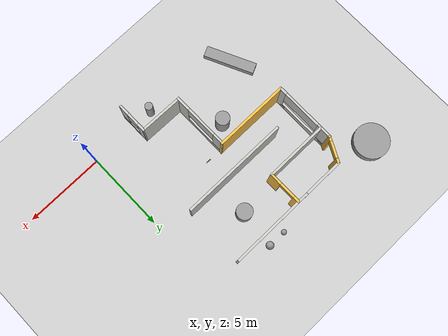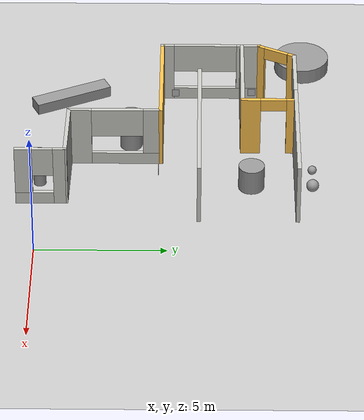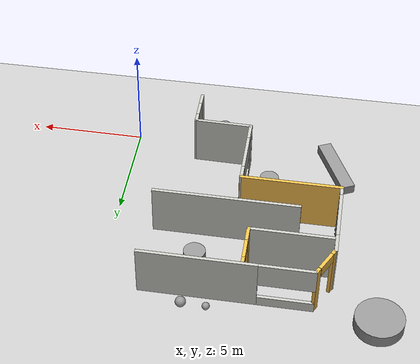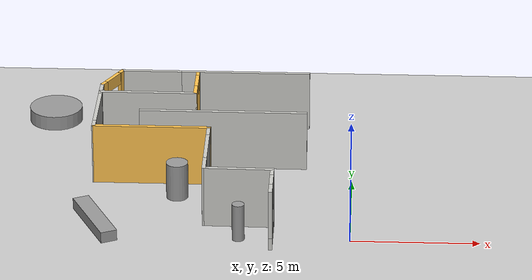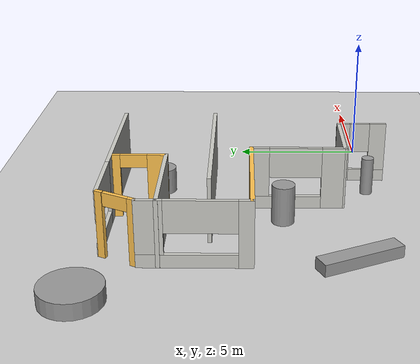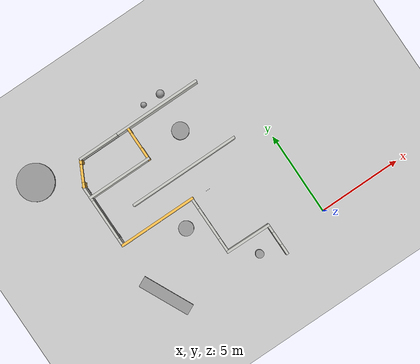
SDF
<sdf version="1.6">
 <world name="default">
  <model name="ground_plane">
   <static>1</static>
   <link name="link">
    <collision name="collision">
     <geometry><plane><normal>0 0 1</normal><size>100 100</size></plane></geometry>
     <surface>
      <contact><collide_bitmask>65535</collide_bitmask></contact>
      <friction><ode><mu>100</mu><mu2>50</mu2></ode></friction>
     </surface>
    </collision>
    <visual name="visual">
     <cast_shadows>0</cast_shadows>
     <geometry><plane><normal>0 0 1</normal><size>100 100</size></plane></geometry>
     <material>
      <script><uri>file://media/materials/scripts/gazebo.material</uri><name>Gazebo/Grey</name></script>
     </material>
    </visual>
   </link>
  </model>
  <model name="unit_cylinder">
   <pose>-4.10994 8.17937 0.499996 3e-06 1e-06 -0</pose>
   <link name="link">
    <inertial>
     <mass>1</mass>
     <inertia><ixx>0.145833</ixx><ixy>0</ixy><ixz>0</ixz><iyy>0.145833</iyy><iyz>0</iyz><izz>0.125</izz></inertia>
    </inertial>
    <collision name="collision">
     <geometry><cylinder><radius>0.5</radius><length>1</length></cylinder></geometry>
    </collision>
    <visual name="visual">
     <geometry><cylinder><radius>0.5</radius><length>1</length></cylinder></geometry>
     <material>
      <script><name>Gazebo/Grey</name><uri>file://media/materials/scripts/gazebo.material</uri></script>
     </material>
    </visual>
   </link>
  </model>
  <model name="Apriltag36_11_00002">
   <link name="main">
    <visual name="main_Visual">
     <geometry><box><size>0.3 0.3 0.01</size></box></geometry>
     <material>
      <script>
       <uri>model://Apriltag36_11_00002/materials/scripts</uri>
       <uri>model://Apriltag36_11_00002/materials/textures</uri>
       <name>Apriltag36_11_00002</name>
      </script>
     </material>
    </visual>
   </link>
   <static>1</static>
   <pose>-10.191 5.19682 0.271947 1.5708 -0 1.5708</pose>
  </model>
  <model name="Apriltag36_11_00005">
   <link name="main">
    <visual name="main_Visual">
     <geometry><box><size>0.3 0.3 0.01</size></box></geometry>
     <material>
      <script>
       <uri>model://Apriltag36_11_00005/materials/scripts</uri>
       <uri>model://Apriltag36_11_00005/materials/textures</uri>
       <name>Apriltag36_11_00005</name>
      </script>
     </material>
    </visual>
   </link>
   <static>1</static>
   <pose>-4.71563 4.58614 0.3494 1.5708 -0 0</pose>
  </model>
  <model name="Apriltag36_11_00009">
   <link name="main">
    <visual name="main_Visual">
     <geometry><box><size>0.3 0.3 0.01</size></box></geometry>
     <material>
      <script>
       <uri>model://Apriltag36_11_00009/materials/scripts</uri>
       <uri>model://Apriltag36_11_00009/materials/textures</uri>
       <name>Apriltag36_11_00009</name>
      </script>
     </material>
    </visual>
   </link>
   <static>1</static>
   <pose>-10.1922 8.25876 0.312692 1.5708 -0 1.5708</pose>
  </model>
  <model name="House2">
   <link name="Wall_11">
    <pose>-5.56128 -0.730875 0 0 -0 1.57452</pose>
    <visual name="Wall_11_Visual_0">
     <pose>-1.37937 0 1.25 0 -0 0</pose>
     <geometry><box><size>0.939651 0.15 2.5</size></box></geometry>
     <material>
      <script><uri>file://media/materials/scripts/gazebo.material</uri><name>Gazebo/CeilingTiled</name></script>
      <ambient>1 0.764706 0.305882 1</ambient>
     </material>
     <meta><layer>0</layer></meta>
    </visual>
    <visual name="Wall_11_Visual_1">
     <pose>0.469826 0 0.25 0 -0 0</pose>
     <geometry><box><size>2.75875 0.15 0.5</size></box></geometry>
     <material>
      <script><uri>file://media/materials/scripts/gazebo.material</uri><name>Gazebo/CeilingTiled</name></script>
      <ambient>1 0.764706 0.305882 1</ambient>
     </material>
     <meta><layer>0</layer></meta>
    </visual>
    <visual name="Wall_11_Visual_2">
     <pose>1.46983 0 1.5 0 -0 0</pose>
     <geometry><box><size>0.758748 0.15 2</size></box></geometry>
     <material>
      <script><uri>file://media/materials/scripts/gazebo.material</uri><name>Gazebo/CeilingTiled</name></script>
      <ambient>1 0.764706 0.305882 1</ambient>
     </material>
     <meta><layer>0</layer></meta>
    </visual>
    <visual name="Wall_11_Visual_3">
     <pose>0.090452 0 1.9 0 -0 0</pose>
     <geometry><box><size>2 0.15 1.2</size></box></geometry>
     <material>
      <script><uri>file://media/materials/scripts/gazebo.material</uri><name>Gazebo/CeilingTiled</name></script>
      <ambient>1 0.764706 0.305882 1</ambient>
     </material>
     <meta><layer>0</layer></meta>
    </visual>
    <collision name="Wall_11_Collision_0">
     <pose>-1.37937 0 1.25 0 -0 0</pose>
     <geometry><box><size>0.939651 0.15 2.5</size></box></geometry>
     <surface>
      <friction>
       <ode><mu>1</mu><mu2>1</mu2><fdir1>0 0 0</fdir1><slip1>0</slip1><slip2>0</slip2></ode>
       <torsional>
        <coefficient>1</coefficient>
        <patch_radius>0</patch_radius>
        <surface_radius>0</surface_radius>
        <use_patch_radius>1</use_patch_radius>
        <ode><slip>0</slip></ode>
       </torsional>
      </friction>
      <bounce><restitution_coefficient>0</restitution_coefficient><threshold>1e+06</threshold></bounce>
      <contact>
       <collide_without_contact>0</collide_without_contact>
       <collide_without_contact_bitmask>1</collide_without_contact_bitmask>
       <collide_bitmask>1</collide_bitmask>
       <ode>
        <soft_cfm>0</soft_cfm>
        <soft_erp>0.2</soft_erp>
        <kp>1e+13</kp>
        <kd>1</kd>
        <max_vel>0.01</max_vel>
        <min_depth>0</min_depth>
       </ode>
       <bullet>
        <split_impulse>1</split_impulse>
        <split_impulse_penetration_threshold>-0.01</split_impulse_penetration_threshold>
        <soft_cfm>0</soft_cfm>
        <soft_erp>0.2</soft_erp>
        <kp>1e+13</kp>
        <kd>1</kd>
       </bullet>
      </contact>
     </surface>
    </collision>
    <collision name="Wall_11_Collision_1">
     <pose>0.469826 0 0.25 0 -0 0</pose>
     <geometry><box><size>2.75875 0.15 0.5</size></box></geometry>
     <surface>
      <friction>
       <ode><mu>1</mu><mu2>1</mu2><fdir1>0 0 0</fdir1><slip1>0</slip1><slip2>0</slip2></ode>
       <torsional>
        <coefficient>1</coefficient>
        <patch_radius>0</patch_radius>
        <surface_radius>0</surface_radius>
        <use_patch_radius>1</use_patch_radius>
        <ode><slip>0</slip></ode>
       </torsional>
      </friction>
      <bounce><restitution_coefficient>0</restitution_coefficient><threshold>1e+06</threshold></bounce>
      <contact>
       <collide_without_contact>0</collide_without_contact>
       <collide_without_contact_bitmask>1</collide_without_contact_bitmask>
       <collide_bitmask>1</collide_bitmask>
       <ode>
        <soft_cfm>0</soft_cfm>
        <soft_erp>0.2</soft_erp>
        <kp>1e+13</kp>
        <kd>1</kd>
        <max_vel>0.01</max_vel>
        <min_depth>0</min_depth>
       </ode>
       <bullet>
        <split_impulse>1</split_impulse>
        <split_impulse_penetration_threshold>-0.01</split_impulse_penetration_threshold>
        <soft_cfm>0</soft_cfm>
        <soft_erp>0.2</soft_erp>
        <kp>1e+13</kp>
        <kd>1</kd>
       </bullet>
      </contact>
     </surface>
    </collision>
    <collision name="Wall_11_Collision_2">
     <pose>1.46983 0 1.5 0 -0 0</pose>
     <geometry><box><size>0.758748 0.15 2</size></box></geometry>
     <surface>
      <friction>
       <ode><mu>1</mu><mu2>1</mu2><fdir1>0 0 0</fdir1><slip1>0</slip1><slip2>0</slip2></ode>
       <torsional>
        <coefficient>1</coefficient>
        <patch_radius>0</patch_radius>
        <surface_radius>0</surface_radius>
        <use_patch_radius>1</use_patch_radius>
        <ode><slip>0</slip></ode>
       </torsional>
      </friction>
      <bounce><restitution_coefficient>0</restitution_coefficient><threshold>1e+06</threshold></bounce>
      <contact>
       <collide_without_contact>0</collide_without_contact>
       <collide_without_contact_bitmask>1</collide_without_contact_bitmask>
       <collide_bitmask>1</collide_bitmask>
       <ode>
        <soft_cfm>0</soft_cfm>
        <soft_erp>0.2</soft_erp>
        <kp>1e+13</kp>
        <kd>1</kd>
        <max_vel>0.01</max_vel>
        <min_depth>0</min_depth>
       </ode>
       <bullet>
        <split_impulse>1</split_impulse>
        <split_impulse_penetration_threshold>-0.01</split_impulse_penetration_threshold>
        <soft_cfm>0</soft_cfm>
        <soft_erp>0.2</soft_erp>
        <kp>1e+13</kp>
        <kd>1</kd>
       </bullet>
      </contact>
     </surface>
    </collision>
    <collision name="Wall_11_Collision_3">
     <pose>0.090452 0 1.9 0 -0 0</pose>
     <geometry><box><size>2 0.15 1.2</size></box></geometry>
     <surface>
      <friction>
       <ode><mu>1</mu><mu2>1</mu2><fdir1>0 0 0</fdir1><slip1>0</slip1><slip2>0</slip2></ode>
       <torsional>
        <coefficient>1</coefficient>
        <patch_radius>0</patch_radius>
        <surface_radius>0</surface_radius>
        <use_patch_radius>1</use_patch_radius>
        <ode><slip>0</slip></ode>
       </torsional>
      </friction>
      <bounce><restitution_coefficient>0</restitution_coefficient><threshold>1e+06</threshold></bounce>
      <contact>
       <collide_without_contact>0</collide_without_contact>
       <collide_without_contact_bitmask>1</collide_without_contact_bitmask>
       <collide_bitmask>1</collide_bitmask>
       <ode>
        <soft_cfm>0</soft_cfm>
        <soft_erp>0.2</soft_erp>
        <kp>1e+13</kp>
        <kd>1</kd>
        <max_vel>0.01</max_vel>
        <min_depth>0</min_depth>
       </ode>
       <bullet>
        <split_impulse>1</split_impulse>
        <split_impulse_penetration_threshold>-0.01</split_impulse_penetration_threshold>
        <soft_cfm>0</soft_cfm>
        <soft_erp>0.2</soft_erp>
        <kp>1e+13</kp>
        <kd>1</kd>
       </bullet>
      </contact>
     </surface>
    </collision>
   </link>
   <link name="Wall_16">
    <pose>-2.90665 -3.46974 0 0 0 -1.5708</pose>
    <visual name="Wall_16_Visual_0">
     <pose>-0.732687 0 1.25 0 -0 0</pose>
     <geometry><box><size>0.534625 0.15 2.5</size></box></geometry>
     <material>
      <script><uri>file://media/materials/scripts/gazebo.material</uri><name>Gazebo/CeilingTiled</name></script>
      <ambient>1 0.764706 0.305882 1</ambient>
     </material>
     <meta><layer>0</layer></meta>
    </visual>
    <visual name="Wall_16_Visual_1">
     <pose>0.267313 0 0.25 0 -0 0</pose>
     <geometry><box><size>1.46538 0.15 0.5</size></box></geometry>
     <material>
      <script><uri>file://media/materials/scripts/gazebo.material</uri><name>Gazebo/CeilingTiled</name></script>
      <ambient>1 0.764706 0.305882 1</ambient>
     </material>
     <meta><layer>0</layer></meta>
    </visual>
    <visual name="Wall_16_Visual_2">
     <pose>0.667313 0 1.5 0 -0 0</pose>
     <geometry><box><size>0.665375 0.15 2</size></box></geometry>
     <material>
      <script><uri>file://media/materials/scripts/gazebo.material</uri><name>Gazebo/CeilingTiled</name></script>
      <ambient>1 0.764706 0.305882 1</ambient>
     </material>
     <meta><layer>0</layer></meta>
    </visual>
    <visual name="Wall_16_Visual_3">
     <pose>-0.065375 0 1.9 0 -0 0</pose>
     <geometry><box><size>0.8 0.15 1.2</size></box></geometry>
     <material>
      <script><uri>file://media/materials/scripts/gazebo.material</uri><name>Gazebo/CeilingTiled</name></script>
      <ambient>1 0.764706 0.305882 1</ambient>
     </material>
     <meta><layer>0</layer></meta>
    </visual>
    <collision name="Wall_16_Collision_0">
     <pose>-0.732687 0 1.25 0 -0 0</pose>
     <geometry><box><size>0.534625 0.15 2.5</size></box></geometry>
     <surface>
      <friction>
       <ode><mu>1</mu><mu2>1</mu2><fdir1>0 0 0</fdir1><slip1>0</slip1><slip2>0</slip2></ode>
       <torsional>
        <coefficient>1</coefficient>
        <patch_radius>0</patch_radius>
        <surface_radius>0</surface_radius>
        <use_patch_radius>1</use_patch_radius>
        <ode><slip>0</slip></ode>
       </torsional>
      </friction>
      <bounce><restitution_coefficient>0</restitution_coefficient><threshold>1e+06</threshold></bounce>
      <contact>
       <collide_without_contact>0</collide_without_contact>
       <collide_without_contact_bitmask>1</collide_without_contact_bitmask>
       <collide_bitmask>1</collide_bitmask>
       <ode>
        <soft_cfm>0</soft_cfm>
        <soft_erp>0.2</soft_erp>
        <kp>1e+13</kp>
        <kd>1</kd>
        <max_vel>0.01</max_vel>
        <min_depth>0</min_depth>
       </ode>
       <bullet>
        <split_impulse>1</split_impulse>
        <split_impulse_penetration_threshold>-0.01</split_impulse_penetration_threshold>
        <soft_cfm>0</soft_cfm>
        <soft_erp>0.2</soft_erp>
        <kp>1e+13</kp>
        <kd>1</kd>
       </bullet>
      </contact>
     </surface>
    </collision>
    <collision name="Wall_16_Collision_1">
     <pose>0.267313 0 0.25 0 -0 0</pose>
     <geometry><box><size>1.46538 0.15 0.5</size></box></geometry>
     <surface>
      <friction>
       <ode><mu>1</mu><mu2>1</mu2><fdir1>0 0 0</fdir1><slip1>0</slip1><slip2>0</slip2></ode>
       <torsional>
        <coefficient>1</coefficient>
        <patch_radius>0</patch_radius>
        <surface_radius>0</surface_radius>
        <use_patch_radius>1</use_patch_radius>
        <ode><slip>0</slip></ode>
       </torsional>
      </friction>
      <bounce><restitution_coefficient>0</restitution_coefficient><threshold>1e+06</threshold></bounce>
      <contact>
       <collide_without_contact>0</collide_without_contact>
       <collide_without_contact_bitmask>1</collide_without_contact_bitmask>
       <collide_bitmask>1</collide_bitmask>
       <ode>
        <soft_cfm>0</soft_cfm>
        <soft_erp>0.2</soft_erp>
        <kp>1e+13</kp>
        <kd>1</kd>
        <max_vel>0.01</max_vel>
        <min_depth>0</min_depth>
       </ode>
       <bullet>
        <split_impulse>1</split_impulse>
        <split_impulse_penetration_threshold>-0.01</split_impulse_penetration_threshold>
        <soft_cfm>0</soft_cfm>
        <soft_erp>0.2</soft_erp>
        <kp>1e+13</kp>
        <kd>1</kd>
       </bullet>
      </contact>
     </surface>
    </collision>
    <collision name="Wall_16_Collision_2">
     <pose>0.667313 0 1.5 0 -0 0</pose>
     <geometry><box><size>0.665375 0.15 2</size></box></geometry>
     <surface>
      <friction>
       <ode><mu>1</mu><mu2>1</mu2><fdir1>0 0 0</fdir1><slip1>0</slip1><slip2>0</slip2></ode>
       <torsional>
        <coefficient>1</coefficient>
        <patch_radius>0</patch_radius>
        <surface_radius>0</surface_radius>
        <use_patch_radius>1</use_patch_radius>
        <ode><slip>0</slip></ode>
       </torsional>
      </friction>
      <bounce><restitution_coefficient>0</restitution_coefficient><threshold>1e+06</threshold></bounce>
      <contact>
       <collide_without_contact>0</collide_without_contact>
       <collide_without_contact_bitmask>1</collide_without_contact_bitmask>
       <collide_bitmask>1</collide_bitmask>
       <ode>
        <soft_cfm>0</soft_cfm>
        <soft_erp>0.2</soft_erp>
        <kp>1e+13</kp>
        <kd>1</kd>
        <max_vel>0.01</max_vel>
        <min_depth>0</min_depth>
       </ode>
       <bullet>
        <split_impulse>1</split_impulse>
        <split_impulse_penetration_threshold>-0.01</split_impulse_penetration_threshold>
        <soft_cfm>0</soft_cfm>
        <soft_erp>0.2</soft_erp>
        <kp>1e+13</kp>
        <kd>1</kd>
       </bullet>
      </contact>
     </surface>
    </collision>
    <collision name="Wall_16_Collision_3">
     <pose>-0.065375 0 1.9 0 -0 0</pose>
     <geometry><box><size>0.8 0.15 1.2</size></box></geometry>
     <surface>
      <friction>
       <ode><mu>1</mu><mu2>1</mu2><fdir1>0 0 0</fdir1><slip1>0</slip1><slip2>0</slip2></ode>
       <torsional>
        <coefficient>1</coefficient>
        <patch_radius>0</patch_radius>
        <surface_radius>0</surface_radius>
        <use_patch_radius>1</use_patch_radius>
        <ode><slip>0</slip></ode>
       </torsional>
      </friction>
      <bounce><restitution_coefficient>0</restitution_coefficient><threshold>1e+06</threshold></bounce>
      <contact>
       <collide_without_contact>0</collide_without_contact>
       <collide_without_contact_bitmask>1</collide_without_contact_bitmask>
       <collide_bitmask>1</collide_bitmask>
       <ode>
        <soft_cfm>0</soft_cfm>
        <soft_erp>0.2</soft_erp>
        <kp>1e+13</kp>
        <kd>1</kd>
        <max_vel>0.01</max_vel>
        <min_depth>0</min_depth>
       </ode>
       <bullet>
        <split_impulse>1</split_impulse>
        <split_impulse_penetration_threshold>-0.01</split_impulse_penetration_threshold>
        <soft_cfm>0</soft_cfm>
        <soft_erp>0.2</soft_erp>
        <kp>1e+13</kp>
        <kd>1</kd>
       </bullet>
      </contact>
     </surface>
    </collision>
   </link>
   <link name="Wall_27_clone">
    <pose>-9.80571 5.54335 0 0 -0 1.09911</pose>
    <inertial>
     <mass>1</mass>
     <inertia><ixx>1</ixx><ixy>0</ixy><ixz>0</ixz><iyy>1</iyy><iyz>0</iyz><izz>1</izz></inertia>
    </inertial>
    <visual name="Wall_27_Visual_0">
     <pose>-0.616683 0 1.25 0 -0 0</pose>
     <geometry><box><size>0.333366 0.15 2.5</size></box></geometry>
     <material>
      <script><uri>file://media/materials/scripts/gazebo.material</uri><name>Gazebo/Grey</name></script>
      <ambient>1 0.765 0.306 1</ambient>
      <shader type="vertex"><normal_map>__default__</normal_map></shader>
      <diffuse>0.7 0.7 0.7 1</diffuse>
      <specular>0.01 0.01 0.01 1</specular>
      <emissive>0 0 0 1</emissive>
     </material>
     <meta><layer>0</layer></meta>
    </visual>
    <visual name="Wall_27_Visual_2">
     <pose>0.041634 0 2.25 0 -0 0</pose>
     <geometry><box><size>1 0.15 0.5</size></box></geometry>
     <material>
      <script><uri>file://media/materials/scripts/gazebo.material</uri><name>Gazebo/Grey</name></script>
      <ambient>1 0.765 0.306 1</ambient>
      <shader type="vertex"><normal_map>__default__</normal_map></shader>
      <diffuse>0.7 0.7 0.7 1</diffuse>
      <specular>0.01 0.01 0.01 1</specular>
      <emissive>0 0 0 1</emissive>
     </material>
     <meta><layer>0</layer></meta>
    </visual>
    <visual name="Wall_27_Visual_1">
     <pose>0.708317 0 1.25 0 -0 0</pose>
     <geometry><box><size>0.293366 0.15 2.5</size></box></geometry>
     <material>
      <script><uri>file://media/materials/scripts/gazebo.material</uri><name>Gazebo/Grey</name></script>
      <ambient>1 0.765 0.306 1</ambient>
      <shader type="vertex"><normal_map>__default__</normal_map></shader>
      <diffuse>0.7 0.7 0.7 1</diffuse>
      <specular>0.01 0.01 0.01 1</specular>
      <emissive>0 0 0 1</emissive>
     </material>
     <meta><layer>0</layer></meta>
    </visual>
    <collision name="Wall_27_Collision_1">
     <pose>0.708317 0 1.25 0 -0 0</pose>
     <geometry><box><size>0.333366 0.15 2.5</size></box></geometry>
     <surface>
      <friction>
       <ode><mu>1</mu><mu2>1</mu2><fdir1>0 0 0</fdir1><slip1>0</slip1><slip2>0</slip2></ode>
       <torsional>
        <coefficient>1</coefficient>
        <patch_radius>0</patch_radius>
        <surface_radius>0</surface_radius>
        <use_patch_radius>1</use_patch_radius>
        <ode><slip>0</slip></ode>
       </torsional>
      </friction>
      <bounce><restitution_coefficient>0</restitution_coefficient><threshold>1e+06</threshold></bounce>
      <contact>
       <collide_without_contact>0</collide_without_contact>
       <collide_without_contact_bitmask>1</collide_without_contact_bitmask>
       <collide_bitmask>1</collide_bitmask>
       <ode>
        <soft_cfm>0</soft_cfm>
        <soft_erp>0.2</soft_erp>
        <kp>1e+13</kp>
        <kd>1</kd>
        <max_vel>0.01</max_vel>
        <min_depth>0</min_depth>
       </ode>
       <bullet>
        <split_impulse>1</split_impulse>
        <split_impulse_penetration_threshold>-0.01</split_impulse_penetration_threshold>
        <soft_cfm>0</soft_cfm>
        <soft_erp>0.2</soft_erp>
        <kp>1e+13</kp>
        <kd>1</kd>
       </bullet>
      </contact>
     </surface>
    </collision>
    <collision name="Wall_27_Collision_2">
     <pose>0.041634 0 2.25 0 -0 0</pose>
     <geometry><box><size>1 0.15 0.5</size></box></geometry>
     <surface>
      <friction>
       <ode><mu>1</mu><mu2>1</mu2><fdir1>0 0 0</fdir1><slip1>0</slip1><slip2>0</slip2></ode>
       <torsional>
        <coefficient>1</coefficient>
        <patch_radius>0</patch_radius>
        <surface_radius>0</surface_radius>
        <use_patch_radius>1</use_patch_radius>
        <ode><slip>0</slip></ode>
       </torsional>
      </friction>
      <bounce><restitution_coefficient>0</restitution_coefficient><threshold>1e+06</threshold></bounce>
      <contact>
       <collide_without_contact>0</collide_without_contact>
       <collide_without_contact_bitmask>1</collide_without_contact_bitmask>
       <collide_bitmask>1</collide_bitmask>
       <ode>
        <soft_cfm>0</soft_cfm>
        <soft_erp>0.2</soft_erp>
        <kp>1e+13</kp>
        <kd>1</kd>
        <max_vel>0.01</max_vel>
        <min_depth>0</min_depth>
       </ode>
       <bullet>
        <split_impulse>1</split_impulse>
        <split_impulse_penetration_threshold>-0.01</split_impulse_penetration_threshold>
        <soft_cfm>0</soft_cfm>
        <soft_erp>0.2</soft_erp>
        <kp>1e+13</kp>
        <kd>1</kd>
       </bullet>
      </contact>
     </surface>
    </collision>
    <collision name="Wall_27_Collision_0">
     <pose>-0.616683 0 1.25 0 -0 0</pose>
     <geometry><box><size>0.333366 0.15 2.5</size></box></geometry>
     <surface>
      <friction>
       <ode><mu>1</mu><mu2>1</mu2><fdir1>0 0 0</fdir1><slip1>0</slip1><slip2>0</slip2></ode>
       <torsional>
        <coefficient>1</coefficient>
        <patch_radius>0</patch_radius>
        <surface_radius>0</surface_radius>
        <use_patch_radius>1</use_patch_radius>
        <ode><slip>0</slip></ode>
       </torsional>
      </friction>
      <bounce><restitution_coefficient>0</restitution_coefficient><threshold>1e+06</threshold></bounce>
      <contact>
       <collide_without_contact>0</collide_without_contact>
       <collide_without_contact_bitmask>1</collide_without_contact_bitmask>
       <collide_bitmask>1</collide_bitmask>
       <ode>
        <soft_cfm>0</soft_cfm>
        <soft_erp>0.2</soft_erp>
        <kp>1e+13</kp>
        <kd>1</kd>
        <max_vel>0.01</max_vel>
        <min_depth>0</min_depth>
       </ode>
       <bullet>
        <split_impulse>1</split_impulse>
        <split_impulse_penetration_threshold>-0.01</split_impulse_penetration_threshold>
        <soft_cfm>0</soft_cfm>
        <soft_erp>0.2</soft_erp>
        <kp>1e+13</kp>
        <kd>1</kd>
       </bullet>
      </contact>
     </surface>
    </collision>
   </link>
   <link name="Wall_30">
    <pose>-4.23066 -2.5249 0 0 0 -0.014982</pose>
    <visual name="Wall_30_Visual">
     <pose>0 0 1.25 0 -0 0</pose>
     <geometry><box><size>2.79832 0.15 2.5</size></box></geometry>
     <material>
      <script><uri>file://media/materials/scripts/gazebo.material</uri><name>Gazebo/CeilingTiled</name></script>
      <ambient>1 0.764706 0.305882 1</ambient>
     </material>
     <meta><layer>0</layer></meta>
    </visual>
    <collision name="Wall_30_Collision">
     <pose>0 0 1.25 0 -0 0</pose>
     <geometry><box><size>2.79832 0.15 2.5</size></box></geometry>
     <surface>
      <friction>
       <ode><mu>1</mu><mu2>1</mu2><fdir1>0 0 0</fdir1><slip1>0</slip1><slip2>0</slip2></ode>
       <torsional>
        <coefficient>1</coefficient>
        <patch_radius>0</patch_radius>
        <surface_radius>0</surface_radius>
        <use_patch_radius>1</use_patch_radius>
        <ode><slip>0</slip></ode>
       </torsional>
      </friction>
      <bounce><restitution_coefficient>0</restitution_coefficient><threshold>1e+06</threshold></bounce>
      <contact>
       <collide_without_contact>0</collide_without_contact>
       <collide_without_contact_bitmask>1</collide_without_contact_bitmask>
       <collide_bitmask>1</collide_bitmask>
       <ode>
        <soft_cfm>0</soft_cfm>
        <soft_erp>0.2</soft_erp>
        <kp>1e+13</kp>
        <kd>1</kd>
        <max_vel>0.01</max_vel>
        <min_depth>0</min_depth>
       </ode>
       <bullet>
        <split_impulse>1</split_impulse>
        <split_impulse_penetration_threshold>-0.01</split_impulse_penetration_threshold>
        <soft_cfm>0</soft_cfm>
        <soft_erp>0.2</soft_erp>
        <kp>1e+13</kp>
        <kd>1</kd>
       </bullet>
      </contact>
     </surface>
    </collision>
   </link>
   <link name="Wall_49">
    <pose>-6.20027 6.28663 0 0 -0 3.14159</pose>
    <inertial>
     <mass>1</mass>
     <inertia><ixx>1</ixx><ixy>0</ixy><ixz>0</ixz><iyy>1</iyy><iyz>0</iyz><izz>1</izz></inertia>
    </inertial>
    <visual name="Wall_49_Visual_0">
     <pose>-1.85645 0 1.25 0 -0 0</pose>
     <geometry><box><size>5.28711 0.15 2.5</size></box></geometry>
     <material>
      <script><uri>file://media/materials/scripts/gazebo.material</uri><name>Gazebo/CeilingTiled</name></script>
      <ambient>1 0.765 0.306 1</ambient>
      <shader type="vertex"><normal_map>__default__</normal_map></shader>
      <diffuse>1 1 1 1</diffuse>
      <specular>0 0 0 1</specular>
      <emissive>0 0 0 1</emissive>
     </material>
     <meta><layer>0</layer></meta>
    </visual>
    <visual name="Wall_49_Visual_1">
     <pose>2.0371 0 0.25 0 -0 0</pose>
     <geometry><box><size>2.5 0.15 0.5</size></box></geometry>
     <material>
      <script><uri>file://media/materials/scripts/gazebo.material</uri><name>Gazebo/CeilingTiled</name></script>
      <ambient>1 0.765 0.306 1</ambient>
      <shader type="vertex"><normal_map>__default__</normal_map></shader>
      <diffuse>1 1 1 1</diffuse>
      <specular>0 0 0 1</specular>
      <emissive>0 0 0 1</emissive>
     </material>
     <meta><layer>0</layer></meta>
    </visual>
    <visual name="Wall_49_Visual_3">
     <pose>2.0371 0 1.9 0 -0 0</pose>
     <geometry><box><size>2.5 0.15 1.2</size></box></geometry>
     <material>
      <script><uri>file://media/materials/scripts/gazebo.material</uri><name>Gazebo/CeilingTiled</name></script>
      <ambient>1 0.765 0.306 1</ambient>
      <shader type="vertex"><normal_map>__default__</normal_map></shader>
      <diffuse>1 1 1 1</diffuse>
      <specular>0 0 0 1</specular>
      <emissive>0 0 0 1</emissive>
     </material>
     <meta><layer>0</layer></meta>
    </visual>
    <collision name="Wall_49_Collision_0">
     <pose>-1.85645 0 1.25 0 -0 0</pose>
     <geometry><box><size>5.28711 0.15 2.5</size></box></geometry>
     <surface>
      <friction>
       <ode><mu>1</mu><mu2>1</mu2><fdir1>0 0 0</fdir1><slip1>0</slip1><slip2>0</slip2></ode>
       <torsional>
        <coefficient>1</coefficient>
        <patch_radius>0</patch_radius>
        <surface_radius>0</surface_radius>
        <use_patch_radius>1</use_patch_radius>
        <ode><slip>0</slip></ode>
       </torsional>
      </friction>
      <bounce><restitution_coefficient>0</restitution_coefficient><threshold>1e+06</threshold></bounce>
      <contact>
       <collide_without_contact>0</collide_without_contact>
       <collide_without_contact_bitmask>1</collide_without_contact_bitmask>
       <collide_bitmask>1</collide_bitmask>
       <ode>
        <soft_cfm>0</soft_cfm>
        <soft_erp>0.2</soft_erp>
        <kp>1e+13</kp>
        <kd>1</kd>
        <max_vel>0.01</max_vel>
        <min_depth>0</min_depth>
       </ode>
       <bullet>
        <split_impulse>1</split_impulse>
        <split_impulse_penetration_threshold>-0.01</split_impulse_penetration_threshold>
        <soft_cfm>0</soft_cfm>
        <soft_erp>0.2</soft_erp>
        <kp>1e+13</kp>
        <kd>1</kd>
       </bullet>
      </contact>
     </surface>
    </collision>
    <collision name="Wall_49_Collision_1">
     <pose>2.0371 0 0.25 0 -0 0</pose>
     <geometry><box><size>2.5 0.15 0.5</size></box></geometry>
     <surface>
      <friction>
       <ode><mu>1</mu><mu2>1</mu2><fdir1>0 0 0</fdir1><slip1>0</slip1><slip2>0</slip2></ode>
       <torsional>
        <coefficient>1</coefficient>
        <patch_radius>0</patch_radius>
        <surface_radius>0</surface_radius>
        <use_patch_radius>1</use_patch_radius>
        <ode><slip>0</slip></ode>
       </torsional>
      </friction>
      <bounce><restitution_coefficient>0</restitution_coefficient><threshold>1e+06</threshold></bounce>
      <contact>
       <collide_without_contact>0</collide_without_contact>
       <collide_without_contact_bitmask>1</collide_without_contact_bitmask>
       <collide_bitmask>1</collide_bitmask>
       <ode>
        <soft_cfm>0</soft_cfm>
        <soft_erp>0.2</soft_erp>
        <kp>1e+13</kp>
        <kd>1</kd>
        <max_vel>0.01</max_vel>
        <min_depth>0</min_depth>
       </ode>
       <bullet>
        <split_impulse>1</split_impulse>
        <split_impulse_penetration_threshold>-0.01</split_impulse_penetration_threshold>
        <soft_cfm>0</soft_cfm>
        <soft_erp>0.2</soft_erp>
        <kp>1e+13</kp>
        <kd>1</kd>
       </bullet>
      </contact>
     </surface>
    </collision>
    <collision name="Wall_49_Collision_3">
     <pose>2.0371 0 1.9 0 -0 0</pose>
     <geometry><box><size>2.5 0.15 1.2</size></box></geometry>
     <surface>
      <friction>
       <ode><mu>1</mu><mu2>1</mu2><fdir1>0 0 0</fdir1><slip1>0</slip1><slip2>0</slip2></ode>
       <torsional>
        <coefficient>1</coefficient>
        <patch_radius>0</patch_radius>
        <surface_radius>0</surface_radius>
        <use_patch_radius>1</use_patch_radius>
        <ode><slip>0</slip></ode>
       </torsional>
      </friction>
      <bounce><restitution_coefficient>0</restitution_coefficient><threshold>1e+06</threshold></bounce>
      <contact>
       <collide_without_contact>0</collide_without_contact>
       <collide_without_contact_bitmask>1</collide_without_contact_bitmask>
       <collide_bitmask>1</collide_bitmask>
       <ode>
        <soft_cfm>0</soft_cfm>
        <soft_erp>0.2</soft_erp>
        <kp>1e+13</kp>
        <kd>1</kd>
        <max_vel>0.01</max_vel>
        <min_depth>0</min_depth>
       </ode>
       <bullet>
        <split_impulse>1</split_impulse>
        <split_impulse_penetration_threshold>-0.01</split_impulse_penetration_threshold>
        <soft_cfm>0</soft_cfm>
        <soft_erp>0.2</soft_erp>
        <kp>1e+13</kp>
        <kd>1</kd>
       </bullet>
      </contact>
     </surface>
    </collision>
   </link>
   <link name="Wall_54">
    <pose>-7.85467 1.04331 0 0 -0 3.14159</pose>
    <visual name="Wall_54_Visual">
     <pose>0 0 1.25 0 -0 0</pose>
     <geometry><box><size>4.75 0.15 2.5</size></box></geometry>
     <material>
      <script><uri>file://media/materials/scripts/gazebo.material</uri><name>Gazebo/Grey</name></script>
      <ambient>1 0.764706 0.305882 1</ambient>
     </material>
     <meta><layer>0</layer></meta>
    </visual>
    <collision name="Wall_54_Collision">
     <pose>0 0 1.25 0 -0 0</pose>
     <geometry><box><size>4.75 0.15 2.5</size></box></geometry>
     <surface>
      <friction>
       <ode><mu>1</mu><mu2>1</mu2><fdir1>0 0 0</fdir1><slip1>0</slip1><slip2>0</slip2></ode>
       <torsional>
        <coefficient>1</coefficient>
        <patch_radius>0</patch_radius>
        <surface_radius>0</surface_radius>
        <use_patch_radius>1</use_patch_radius>
        <ode><slip>0</slip></ode>
       </torsional>
      </friction>
      <bounce><restitution_coefficient>0</restitution_coefficient><threshold>1e+06</threshold></bounce>
      <contact>
       <collide_without_contact>0</collide_without_contact>
       <collide_without_contact_bitmask>1</collide_without_contact_bitmask>
       <collide_bitmask>1</collide_bitmask>
       <ode>
        <soft_cfm>0</soft_cfm>
        <soft_erp>0.2</soft_erp>
        <kp>1e+13</kp>
        <kd>1</kd>
        <max_vel>0.01</max_vel>
        <min_depth>0</min_depth>
       </ode>
       <bullet>
        <split_impulse>1</split_impulse>
        <split_impulse_penetration_threshold>-0.01</split_impulse_penetration_threshold>
        <soft_cfm>0</soft_cfm>
        <soft_erp>0.2</soft_erp>
        <kp>1e+13</kp>
        <kd>1</kd>
       </bullet>
      </contact>
     </surface>
    </collision>
   </link>
   <link name="Wall_55">
    <pose>-10.1547 2.96831 0 0 -0 1.5708</pose>
    <visual name="Wall_55_Visual_0">
     <pose>-1.73413 0 1.25 0 -0 0</pose>
     <geometry><box><size>0.531731 0.15 2.5</size></box></geometry>
     <material>
      <script><uri>file://media/materials/scripts/gazebo.material</uri><name>Gazebo/CeilingTiled</name></script>
      <ambient>1 0.764706 0.305882 1</ambient>
     </material>
     <meta><layer>0</layer></meta>
    </visual>
    <visual name="Wall_55_Visual_1">
     <pose>0.265865 0 0.25 0 -0 0</pose>
     <geometry><box><size>3.46827 0.15 0.5</size></box></geometry>
     <material>
      <script><uri>file://media/materials/scripts/gazebo.material</uri><name>Gazebo/CeilingTiled</name></script>
      <ambient>1 0.764706 0.305882 1</ambient>
     </material>
     <meta><layer>0</layer></meta>
    </visual>
    <visual name="Wall_55_Visual_2">
     <pose>1.51587 0 1.5 0 -0 0</pose>
     <geometry><box><size>0.968269 0.15 2</size></box></geometry>
     <material>
      <script><uri>file://media/materials/scripts/gazebo.material</uri><name>Gazebo/CeilingTiled</name></script>
      <ambient>1 0.764706 0.305882 1</ambient>
     </material>
     <meta><layer>0</layer></meta>
    </visual>
    <visual name="Wall_55_Visual_3">
     <pose>-0.218269 0 1.9 0 -0 0</pose>
     <geometry><box><size>2.5 0.15 1.2</size></box></geometry>
     <material>
      <script><uri>file://media/materials/scripts/gazebo.material</uri><name>Gazebo/CeilingTiled</name></script>
      <ambient>1 0.764706 0.305882 1</ambient>
     </material>
     <meta><layer>0</layer></meta>
    </visual>
    <collision name="Wall_55_Collision_0">
     <pose>-1.73413 0 1.25 0 -0 0</pose>
     <geometry><box><size>0.531731 0.15 2.5</size></box></geometry>
     <surface>
      <friction>
       <ode><mu>1</mu><mu2>1</mu2><fdir1>0 0 0</fdir1><slip1>0</slip1><slip2>0</slip2></ode>
       <torsional>
        <coefficient>1</coefficient>
        <patch_radius>0</patch_radius>
        <surface_radius>0</surface_radius>
        <use_patch_radius>1</use_patch_radius>
        <ode><slip>0</slip></ode>
       </torsional>
      </friction>
      <bounce><restitution_coefficient>0</restitution_coefficient><threshold>1e+06</threshold></bounce>
      <contact>
       <collide_without_contact>0</collide_without_contact>
       <collide_without_contact_bitmask>1</collide_without_contact_bitmask>
       <collide_bitmask>1</collide_bitmask>
       <ode>
        <soft_cfm>0</soft_cfm>
        <soft_erp>0.2</soft_erp>
        <kp>1e+13</kp>
        <kd>1</kd>
        <max_vel>0.01</max_vel>
        <min_depth>0</min_depth>
       </ode>
       <bullet>
        <split_impulse>1</split_impulse>
        <split_impulse_penetration_threshold>-0.01</split_impulse_penetration_threshold>
        <soft_cfm>0</soft_cfm>
        <soft_erp>0.2</soft_erp>
        <kp>1e+13</kp>
        <kd>1</kd>
       </bullet>
      </contact>
     </surface>
    </collision>
    <collision name="Wall_55_Collision_1">
     <pose>0.265865 0 0.25 0 -0 0</pose>
     <geometry><box><size>3.46827 0.15 0.5</size></box></geometry>
     <surface>
      <friction>
       <ode><mu>1</mu><mu2>1</mu2><fdir1>0 0 0</fdir1><slip1>0</slip1><slip2>0</slip2></ode>
       <torsional>
        <coefficient>1</coefficient>
        <patch_radius>0</patch_radius>
        <surface_radius>0</surface_radius>
        <use_patch_radius>1</use_patch_radius>
        <ode><slip>0</slip></ode>
       </torsional>
      </friction>
      <bounce><restitution_coefficient>0</restitution_coefficient><threshold>1e+06</threshold></bounce>
      <contact>
       <collide_without_contact>0</collide_without_contact>
       <collide_without_contact_bitmask>1</collide_without_contact_bitmask>
       <collide_bitmask>1</collide_bitmask>
       <ode>
        <soft_cfm>0</soft_cfm>
        <soft_erp>0.2</soft_erp>
        <kp>1e+13</kp>
        <kd>1</kd>
        <max_vel>0.01</max_vel>
        <min_depth>0</min_depth>
       </ode>
       <bullet>
        <split_impulse>1</split_impulse>
        <split_impulse_penetration_threshold>-0.01</split_impulse_penetration_threshold>
        <soft_cfm>0</soft_cfm>
        <soft_erp>0.2</soft_erp>
        <kp>1e+13</kp>
        <kd>1</kd>
       </bullet>
      </contact>
     </surface>
    </collision>
    <collision name="Wall_55_Collision_2">
     <pose>1.51587 0 1.5 0 -0 0</pose>
     <geometry><box><size>0.968269 0.15 2</size></box></geometry>
     <surface>
      <friction>
       <ode><mu>1</mu><mu2>1</mu2><fdir1>0 0 0</fdir1><slip1>0</slip1><slip2>0</slip2></ode>
       <torsional>
        <coefficient>1</coefficient>
        <patch_radius>0</patch_radius>
        <surface_radius>0</surface_radius>
        <use_patch_radius>1</use_patch_radius>
        <ode><slip>0</slip></ode>
       </torsional>
      </friction>
      <bounce><restitution_coefficient>0</restitution_coefficient><threshold>1e+06</threshold></bounce>
      <contact>
       <collide_without_contact>0</collide_without_contact>
       <collide_without_contact_bitmask>1</collide_without_contact_bitmask>
       <collide_bitmask>1</collide_bitmask>
       <ode>
        <soft_cfm>0</soft_cfm>
        <soft_erp>0.2</soft_erp>
        <kp>1e+13</kp>
        <kd>1</kd>
        <max_vel>0.01</max_vel>
        <min_depth>0</min_depth>
       </ode>
       <bullet>
        <split_impulse>1</split_impulse>
        <split_impulse_penetration_threshold>-0.01</split_impulse_penetration_threshold>
        <soft_cfm>0</soft_cfm>
        <soft_erp>0.2</soft_erp>
        <kp>1e+13</kp>
        <kd>1</kd>
       </bullet>
      </contact>
     </surface>
    </collision>
    <collision name="Wall_55_Collision_3">
     <pose>-0.218269 0 1.9 0 -0 0</pose>
     <geometry><box><size>2.5 0.15 1.2</size></box></geometry>
     <surface>
      <friction>
       <ode><mu>1</mu><mu2>1</mu2><fdir1>0 0 0</fdir1><slip1>0</slip1><slip2>0</slip2></ode>
       <torsional>
        <coefficient>1</coefficient>
        <patch_radius>0</patch_radius>
        <surface_radius>0</surface_radius>
        <use_patch_radius>1</use_patch_radius>
        <ode><slip>0</slip></ode>
       </torsional>
      </friction>
      <bounce><restitution_coefficient>0</restitution_coefficient><threshold>1e+06</threshold></bounce>
      <contact>
       <collide_without_contact>0</collide_without_contact>
       <collide_without_contact_bitmask>1</collide_without_contact_bitmask>
       <collide_bitmask>1</collide_bitmask>
       <ode>
        <soft_cfm>0</soft_cfm>
        <soft_erp>0.2</soft_erp>
        <kp>1e+13</kp>
        <kd>1</kd>
        <max_vel>0.01</max_vel>
        <min_depth>0</min_depth>
       </ode>
       <bullet>
        <split_impulse>1</split_impulse>
        <split_impulse_penetration_threshold>-0.01</split_impulse_penetration_threshold>
        <soft_cfm>0</soft_cfm>
        <soft_erp>0.2</soft_erp>
        <kp>1e+13</kp>
        <kd>1</kd>
       </bullet>
      </contact>
     </surface>
    </collision>
   </link>
   <link name="Wall_58">
    <pose>-5.07896 2.533 0 0 -0 3.14159</pose>
    <visual name="Wall_58_Visual">
     <pose>0 0 1.25 0 -0 0</pose>
     <geometry><box><size>6.75 0.15 2.5</size></box></geometry>
     <material>
      <script><uri>file://media/materials/scripts/gazebo.material</uri><name>Gazebo/CeilingTiled</name></script>
      <ambient>1 0.764706 0.305882 1</ambient>
     </material>
     <meta><layer>0</layer></meta>
    </visual>
    <collision name="Wall_58_Collision">
     <pose>0 0 1.25 0 -0 0</pose>
     <geometry><box><size>6.75 0.15 2.5</size></box></geometry>
     <surface>
      <friction>
       <ode><mu>1</mu><mu2>1</mu2><fdir1>0 0 0</fdir1><slip1>0</slip1><slip2>0</slip2></ode>
       <torsional>
        <coefficient>1</coefficient>
        <patch_radius>0</patch_radius>
        <surface_radius>0</surface_radius>
        <use_patch_radius>1</use_patch_radius>
        <ode><slip>0</slip></ode>
       </torsional>
      </friction>
      <bounce><restitution_coefficient>0</restitution_coefficient><threshold>1e+06</threshold></bounce>
      <contact>
       <collide_without_contact>0</collide_without_contact>
       <collide_without_contact_bitmask>1</collide_without_contact_bitmask>
       <collide_bitmask>1</collide_bitmask>
       <ode>
        <soft_cfm>0</soft_cfm>
        <soft_erp>0.2</soft_erp>
        <kp>1e+13</kp>
        <kd>1</kd>
        <max_vel>0.01</max_vel>
        <min_depth>0</min_depth>
       </ode>
       <bullet>
        <split_impulse>1</split_impulse>
        <split_impulse_penetration_threshold>-0.01</split_impulse_penetration_threshold>
        <soft_cfm>0</soft_cfm>
        <soft_erp>0.2</soft_erp>
        <kp>1e+13</kp>
        <kd>1</kd>
       </bullet>
      </contact>
     </surface>
    </collision>
   </link>
   <link name="Wall_60">
    <pose>-8.23396 4.213 0 0 -0 0</pose>
    <visual name="Wall_60_Visual">
     <pose>0 0 1.25 0 -0 0</pose>
     <geometry><box><size>4 0.15 2.5</size></box></geometry>
     <material>
      <script><uri>file://media/materials/scripts/gazebo.material</uri><name>Gazebo/CeilingTiled</name></script>
      <ambient>1 0.764706 0.305882 1</ambient>
     </material>
     <meta><layer>0</layer></meta>
    </visual>
    <collision name="Wall_60_Collision">
     <pose>0 0 1.25 0 -0 0</pose>
     <geometry><box><size>4 0.15 2.5</size></box></geometry>
     <surface>
      <friction>
       <ode><mu>1</mu><mu2>1</mu2><fdir1>0 0 0</fdir1><slip1>0</slip1><slip2>0</slip2></ode>
       <torsional>
        <coefficient>1</coefficient>
        <patch_radius>0</patch_radius>
        <surface_radius>0</surface_radius>
        <use_patch_radius>1</use_patch_radius>
        <ode><slip>0</slip></ode>
       </torsional>
      </friction>
      <bounce><restitution_coefficient>0</restitution_coefficient><threshold>1e+06</threshold></bounce>
      <contact>
       <collide_without_contact>0</collide_without_contact>
       <collide_without_contact_bitmask>1</collide_without_contact_bitmask>
       <collide_bitmask>1</collide_bitmask>
       <ode>
        <soft_cfm>0</soft_cfm>
        <soft_erp>0.2</soft_erp>
        <kp>1e+13</kp>
        <kd>1</kd>
        <max_vel>0.01</max_vel>
        <min_depth>0</min_depth>
       </ode>
       <bullet>
        <split_impulse>1</split_impulse>
        <split_impulse_penetration_threshold>-0.01</split_impulse_penetration_threshold>
        <soft_cfm>0</soft_cfm>
        <soft_erp>0.2</soft_erp>
        <kp>1e+13</kp>
        <kd>1</kd>
       </bullet>
      </contact>
     </surface>
    </collision>
   </link>
   <link name="Wall_63">
    <pose>-6.30896 5.238 0 0 -0 1.5708</pose>
    <visual name="Wall_63_Visual_0">
     <pose>-0.7125 0 1.25 0 -0 0</pose>
     <geometry><box><size>0.775 0.15 2.5</size></box></geometry>
     <material>
      <script><uri>file://media/materials/scripts/gazebo.material</uri><name>Gazebo/Grey</name></script>
      <ambient>1 0.764706 0.305882 1</ambient>
     </material>
     <meta><layer>0</layer></meta>
    </visual>
    <visual name="Wall_63_Visual_1">
     <pose>0.8875 0 1.25 0 -0 0</pose>
     <geometry><box><size>0.425 0.15 2.5</size></box></geometry>
     <material>
      <script><uri>file://media/materials/scripts/gazebo.material</uri><name>Gazebo/Grey</name></script>
      <ambient>1 0.764706 0.305882 1</ambient>
     </material>
     <meta><layer>0</layer></meta>
    </visual>
    <visual name="Wall_63_Visual_2">
     <pose>0.175 0 2.25 0 -0 0</pose>
     <geometry><box><size>1 0.15 0.5</size></box></geometry>
     <material>
      <script><uri>file://media/materials/scripts/gazebo.material</uri><name>Gazebo/Grey</name></script>
      <ambient>1 0.764706 0.305882 1</ambient>
     </material>
     <meta><layer>0</layer></meta>
    </visual>
    <collision name="Wall_63_Collision_0">
     <pose>-0.7125 0 1.25 0 -0 0</pose>
     <geometry><box><size>0.775 0.15 2.5</size></box></geometry>
     <surface>
      <friction>
       <ode><mu>1</mu><mu2>1</mu2><fdir1>0 0 0</fdir1><slip1>0</slip1><slip2>0</slip2></ode>
       <torsional>
        <coefficient>1</coefficient>
        <patch_radius>0</patch_radius>
        <surface_radius>0</surface_radius>
        <use_patch_radius>1</use_patch_radius>
        <ode><slip>0</slip></ode>
       </torsional>
      </friction>
      <bounce><restitution_coefficient>0</restitution_coefficient><threshold>1e+06</threshold></bounce>
      <contact>
       <collide_without_contact>0</collide_without_contact>
       <collide_without_contact_bitmask>1</collide_without_contact_bitmask>
       <collide_bitmask>1</collide_bitmask>
       <ode>
        <soft_cfm>0</soft_cfm>
        <soft_erp>0.2</soft_erp>
        <kp>1e+13</kp>
        <kd>1</kd>
        <max_vel>0.01</max_vel>
        <min_depth>0</min_depth>
       </ode>
       <bullet>
        <split_impulse>1</split_impulse>
        <split_impulse_penetration_threshold>-0.01</split_impulse_penetration_threshold>
        <soft_cfm>0</soft_cfm>
        <soft_erp>0.2</soft_erp>
        <kp>1e+13</kp>
        <kd>1</kd>
       </bullet>
      </contact>
     </surface>
    </collision>
    <collision name="Wall_63_Collision_1">
     <pose>0.8875 0 1.25 0 -0 0</pose>
     <geometry><box><size>0.425 0.15 2.5</size></box></geometry>
     <surface>
      <friction>
       <ode><mu>1</mu><mu2>1</mu2><fdir1>0 0 0</fdir1><slip1>0</slip1><slip2>0</slip2></ode>
       <torsional>
        <coefficient>1</coefficient>
        <patch_radius>0</patch_radius>
        <surface_radius>0</surface_radius>
        <use_patch_radius>1</use_patch_radius>
        <ode><slip>0</slip></ode>
       </torsional>
      </friction>
      <bounce><restitution_coefficient>0</restitution_coefficient><threshold>1e+06</threshold></bounce>
      <contact>
       <collide_without_contact>0</collide_without_contact>
       <collide_without_contact_bitmask>1</collide_without_contact_bitmask>
       <collide_bitmask>1</collide_bitmask>
       <ode>
        <soft_cfm>0</soft_cfm>
        <soft_erp>0.2</soft_erp>
        <kp>1e+13</kp>
        <kd>1</kd>
        <max_vel>0.01</max_vel>
        <min_depth>0</min_depth>
       </ode>
       <bullet>
        <split_impulse>1</split_impulse>
        <split_impulse_penetration_threshold>-0.01</split_impulse_penetration_threshold>
        <soft_cfm>0</soft_cfm>
        <soft_erp>0.2</soft_erp>
        <kp>1e+13</kp>
        <kd>1</kd>
       </bullet>
      </contact>
     </surface>
    </collision>
    <collision name="Wall_63_Collision_2">
     <pose>0.175 0 2.25 0 -0 0</pose>
     <geometry><box><size>1 0.15 0.5</size></box></geometry>
     <surface>
      <friction>
       <ode><mu>1</mu><mu2>1</mu2><fdir1>0 0 0</fdir1><slip1>0</slip1><slip2>0</slip2></ode>
       <torsional>
        <coefficient>1</coefficient>
        <patch_radius>0</patch_radius>
        <surface_radius>0</surface_radius>
        <use_patch_radius>1</use_patch_radius>
        <ode><slip>0</slip></ode>
       </torsional>
      </friction>
      <bounce><restitution_coefficient>0</restitution_coefficient><threshold>1e+06</threshold></bounce>
      <contact>
       <collide_without_contact>0</collide_without_contact>
       <collide_without_contact_bitmask>1</collide_without_contact_bitmask>
       <collide_bitmask>1</collide_bitmask>
       <ode>
        <soft_cfm>0</soft_cfm>
        <soft_erp>0.2</soft_erp>
        <kp>1e+13</kp>
        <kd>1</kd>
        <max_vel>0.01</max_vel>
        <min_depth>0</min_depth>
       </ode>
       <bullet>
        <split_impulse>1</split_impulse>
        <split_impulse_penetration_threshold>-0.01</split_impulse_penetration_threshold>
        <soft_cfm>0</soft_cfm>
        <soft_erp>0.2</soft_erp>
        <kp>1e+13</kp>
        <kd>1</kd>
       </bullet>
      </contact>
     </surface>
    </collision>
   </link>
   <static>1</static>
   <pose>-0.1319 3.62866 0 0 -0 0</pose>
  </model>
  <model name="unit_box_1">
   <pose>-9.94225 0.996562 0.224228 -1.1e-05 -0 0.44613</pose>
   <link name="link">
    <inertial>
     <mass>1</mass>
     <inertia>
      <ixx>0.166667</ixx>
      <ixy>0</ixy>
      <ixz>0</ixz>
      <iyy>0.166667</iyy>
      <iyz>0</iyz>
      <izz>0.166667</izz>
     </inertia>
    </inertial>
    <collision name="collision"><geometry><box><size>0.656079 3.15662 0.44849</size></box></geometry></collision>
    <visual name="visual">
     <geometry><box><size>0.656079 3.15662 0.44849</size></box></geometry>
     <material>
      <script><name>Gazebo/Grey</name><uri>file://media/materials/scripts/gazebo.material</uri></script>
     </material>
    </visual>
   </link>
  </model>
  <model name="unit_cylinder_2">
   <pose>-12.4228 10.3331 0.296633 5e-06 5e-06 -3.9e-05</pose>
   <link name="link">
    <inertial>
     <mass>1</mass>
     <inertia><ixx>0.145833</ixx><ixy>0</ixy><ixz>0</ixz><iyy>0.145833</iyy><iyz>0</iyz><izz>0.125</izz></inertia>
    </inertial>
    <collision name="collision">
     <geometry><cylinder><radius>1.09182</radius><length>0.593276</length></cylinder></geometry>
    </collision>
    <visual name="visual">
     <geometry><cylinder><radius>1.09182</radius><length>0.593276</length></cylinder></geometry>
     <material>
      <script><name>Gazebo/Grey</name><uri>file://media/materials/scripts/gazebo.material</uri></script>
     </material>
    </visual>
   </link>
  </model>
  <model name="unit_sphere_1">
   <pose>-3.88656 10.5364 0.241085 0 -0 0</pose>
   <link name="link">
    <inertial>
     <mass>1</mass>
     <inertia><ixx>0.1</ixx><ixy>0</ixy><ixz>0</ixz><iyy>0.1</iyy><iyz>0</iyz><izz>0.1</izz></inertia>
    </inertial>
    <collision name="collision"><geometry><sphere><radius>0.241085</radius></sphere></geometry></collision>
    <visual name="visual">
     <geometry><sphere><radius>0.241085</radius></sphere></geometry>
     <material>
      <script><name>Gazebo/Grey</name><uri>file://media/materials/scripts/gazebo.material</uri></script>
     </material>
    </visual>
   </link>
  </model>
  <model name="unit_sphere_1_clone">
   <pose>-4.99945 10.5515 0.170399 0 -0 0</pose>
   <link name="link">
    <inertial>
     <mass>1</mass>
     <inertia><ixx>0.1</ixx><ixy>0</ixy><ixz>0</ixz><iyy>0.1</iyy><iyz>0</iyz><izz>0.1</izz></inertia>
    </inertial>
    <collision name="collision"><geometry><sphere><radius>0.170399</radius></sphere></geometry></collision>
    <visual name="visual">
     <geometry><sphere><radius>0.170399</radius></sphere></geometry>
     <material>
      <script><name>Gazebo/Grey</name><uri>file://media/materials/scripts/gazebo.material</uri></script>
     </material>
    </visual>
   </link>
  </model>
  <model name="unit_cylinder_3_clone_1">
   <pose>-4.30184 0.019474 0.75634 0 0 -3.7e-05</pose>
   <link name="link">
    <inertial>
     <mass>1</mass>
     <inertia><ixx>0.145833</ixx><ixy>0</ixy><ixz>0</ixz><iyy>0.145833</iyy><iyz>0</iyz><izz>0.125</izz></inertia>
    </inertial>
    <collision name="collision">
     <geometry><cylinder><radius>0.240829</radius><length>1.51268</length></cylinder></geometry>
    </collision>
    <visual name="visual">
     <geometry><cylinder><radius>0.240829</radius><length>1.51268</length></cylinder></geometry>
     <material>
      <script><name>Gazebo/Grey</name><uri>file://media/materials/scripts/gazebo.material</uri></script>
     </material>
    </visual>
   </link>
  </model>
  <model name="unit_cylinder_3_clone_2">
   <pose>-6.89162 3.48835 0.756332 -0 -0 -5.7e-05</pose>
   <link name="link">
    <inertial>
     <mass>1</mass>
     <inertia><ixx>0.145833</ixx><ixy>0</ixy><ixz>0</ixz><iyy>0.145833</iyy><iyz>0</iyz><izz>0.125</izz></inertia>
    </inertial>
    <collision name="collision">
     <geometry><cylinder><radius>0.433543</radius><length>1.51268</length></cylinder></geometry>
    </collision>
    <visual name="visual">
     <geometry><cylinder><radius>0.433543</radius><length>1.51268</length></cylinder></geometry>
     <material>
      <script><name>Gazebo/Grey</name><uri>file://media/materials/scripts/gazebo.material</uri></script>
     </material>
    </visual>
   </link>
  </model>
 </world>
</sdf>
